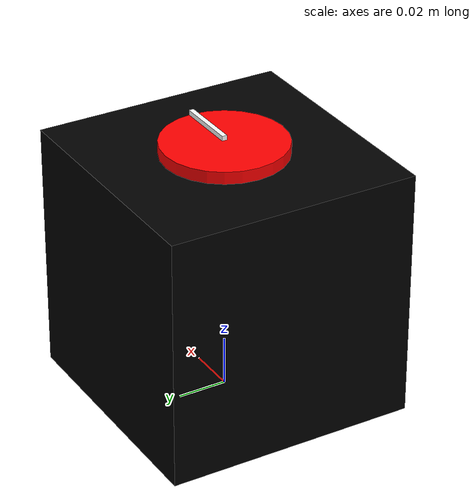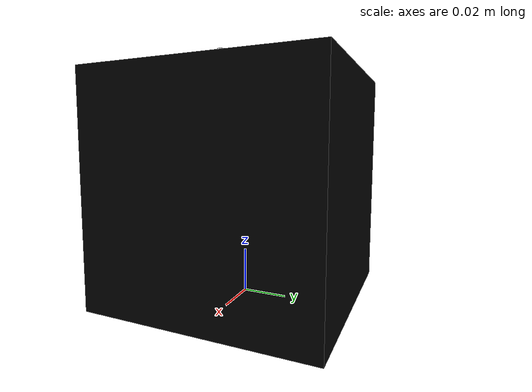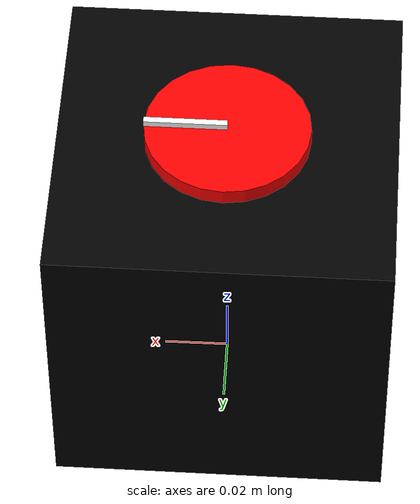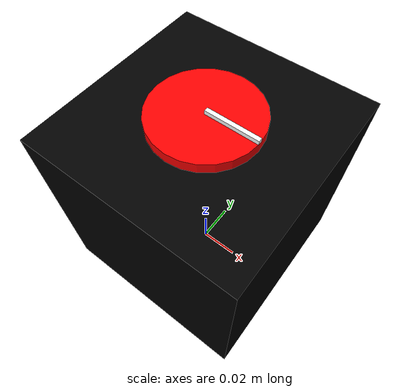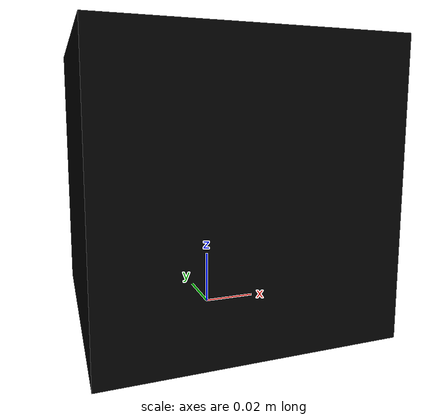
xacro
<?xml version="1.0"?>
<robot name="qube" xmlns:xacro="http://www.ros.org/wiki/xacro">
  <xacro:include filename="$(find qube_description)/urdf/qube.macro.xacro"/>
  <xacro:include filename="$(find qube_driver)/ros2_control/qube_driver.ros2_control.xacro"/>
  <xacro:arg name="baud_rate" default="115200"/>
  <xacro:arg name="device" default="/dev/ttyUSB0"/>
  <xacro:arg name="simulation" default="false"/>
  <link name="world"/>
  <joint name="base_joint" type="fixed">
    <parent link="world"/>
    <child link="base_link"/>
    <origin xyz="0 0 0" rpy="0 0 0"/>
  </joint>
  <xacro:qube prefix=""/>
  <xacro:qube_driver_ros2_control prefix="" name="qube_driver" baud_rate="$(arg baud_rate)" device="$(arg device)" simulation="$(arg simulation)"/>
</robot>

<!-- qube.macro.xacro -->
<robot xmlns:xacro="http://www.ros.org/wiki/xacro">
  <!-- Properties for the model -->
  <xacro:property name="box_size" value="0.102"/>
  <xacro:property name="cylinder_length" value="0.01"/>
  <xacro:property name="cylinder_radius" value="0.025"/>

  <!-- Properties for dynamic angle link -->
  <xacro:property name="pointer_length" value="${cylinder_radius}"/>
  <xacro:property name="pointer_width" value="0.002"/>
  <xacro:property name="pointer_height" value="0.002"/> <!-- Height of the angle link -->
  <xacro:property name="small_box_size" value="${pointer_length} ${pointer_width} ${pointer_height}"/>

  <!-- Macro definition with prefix parameter -->
  <xacro:macro name="qube" params="prefix">
    <!-- Base link -->
    <link name="${prefix}base_link"/>

    <!-- Stator link -->
    <link name="${prefix}stator_link">
      <visual>
        <geometry>
          <box size="${box_size} ${box_size} ${box_size}"/>
        </geometry>
        <material name="black">
          <color rgba="0 0 0 1"/>
        </material>
      </visual>
    </link>

    <!-- Rotor link -->
    <link name="${prefix}rotor_link">
      <visual>
        <geometry>
          <cylinder length="${cylinder_length}" radius="${cylinder_radius}"/>
        </geometry>
        <material name="red">
          <color rgba="1 0 0 1"/>
        </material>
      </visual>
    </link>

    <!-- Angle link positioned on top of the rotor -->
    <link name="${prefix}angle_link">
      <visual>
        <!-- Offset to extend from center to radius and place on top -->
        <origin xyz="${pointer_length / 2} 0 ${pointer_height / 2}" rpy="0 0 0"/>
        <geometry>
          <box size="${small_box_size}"/>
        </geometry>
        <material name="white">
          <color rgba="1 1 1 1"/>
        </material>
      </visual>
    </link>

    <!-- Stator joint -->
    <joint name="${prefix}stator_joint" type="fixed">
      <parent link="${prefix}base_link"/>
      <child link="${prefix}stator_link"/>
      <origin xyz="0 0 ${box_size/2}"/>
    </joint>

    <!-- Motor joint -->
    <joint name="${prefix}motor_joint" type="revolute">
      <parent link="${prefix}stator_link"/>
      <child link="${prefix}rotor_link"/>
      <origin xyz="0 0 ${box_size/2}"/>
      <axis xyz="0 0 -1"/>
      <limit lower="-3.14159" upper="3.14159" effort="1.0" velocity="1.0"/>
    </joint>

    <!-- Indicator joint adjusted to place angle link on top of the rotor -->
    <joint name="${prefix}indicator" type="fixed">
      <parent link="${prefix}rotor_link"/>
      <child link="${prefix}angle_link"/>
      <origin xyz="0 0 ${cylinder_length / 2}" rpy="0 0 0"/>
    </joint>
  </xacro:macro>
</robot>
